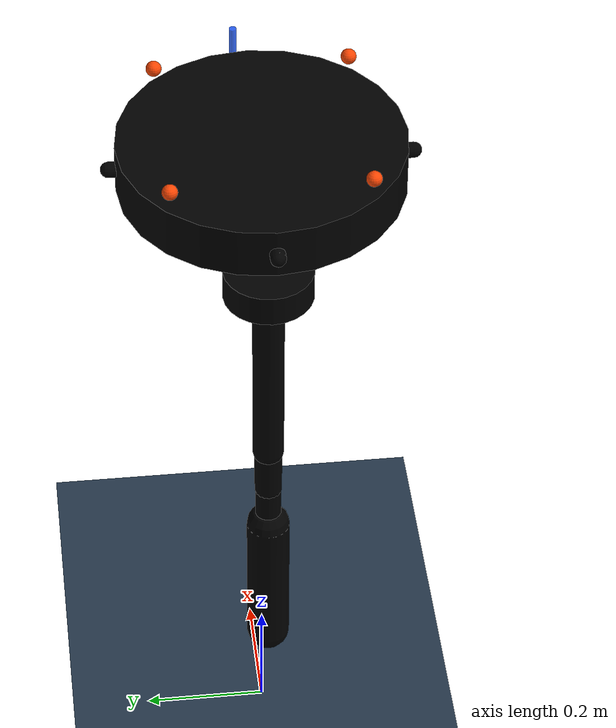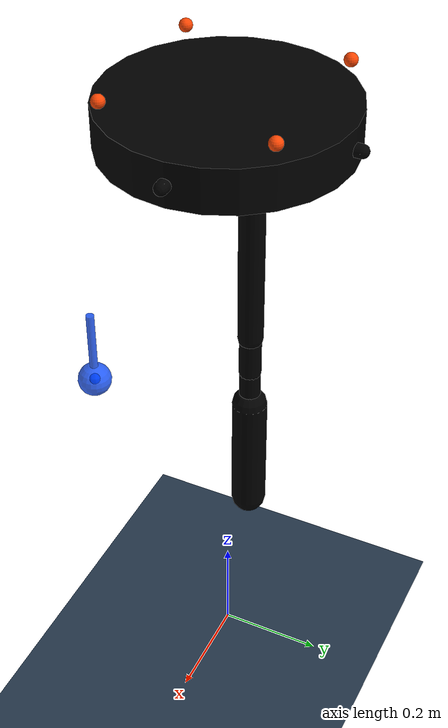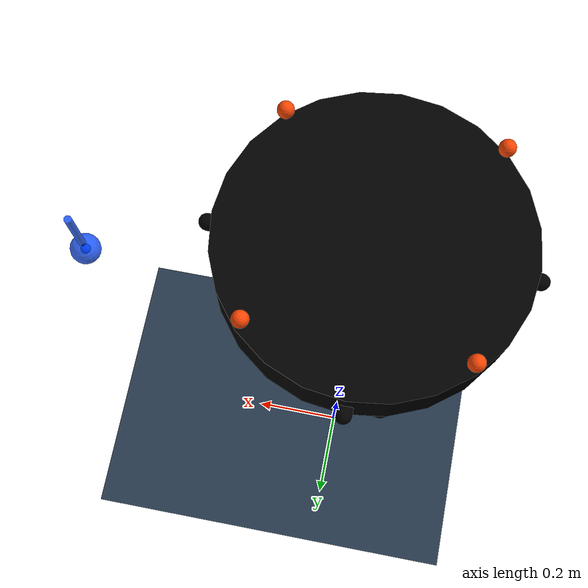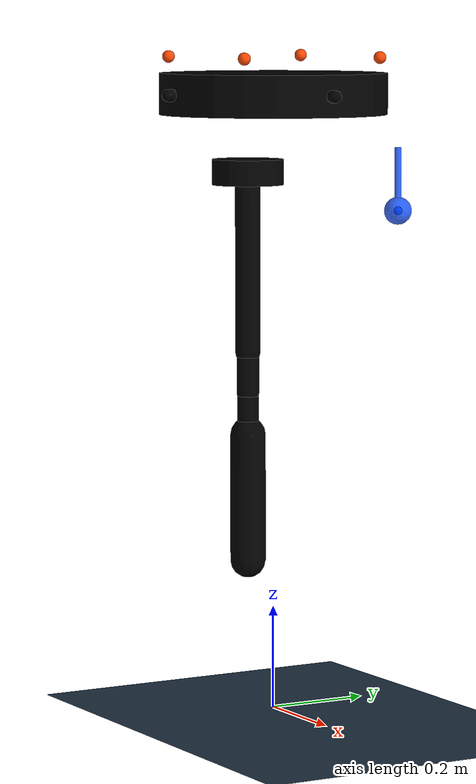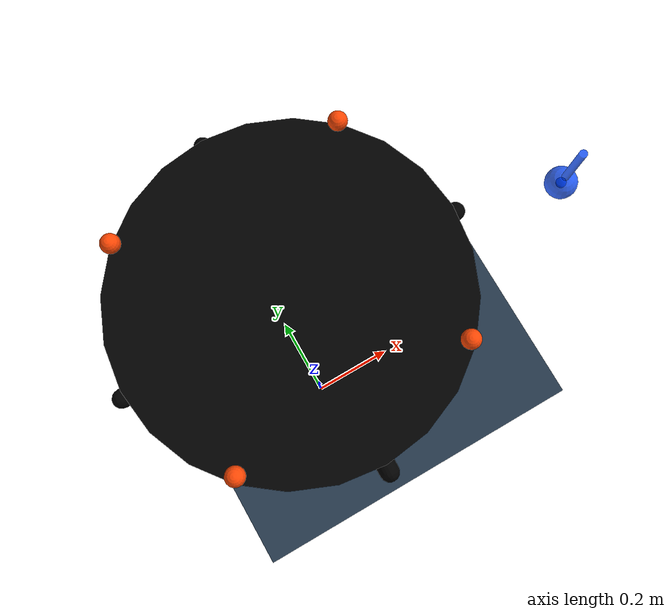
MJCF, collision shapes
<mujoco model="cone_harvest_robot">
  <compiler angle="radian" meshdir="../meshes" autolimits="true" balanceinertia="true"/>
  <option timestep="0.002" gravity="0 0 -9.81" integrator="implicitfast">
    <flag contact="enable"/>
  </option>

  <default>
    <joint damping="0.03" armature="0.002"/>
    <geom friction="0.8 0.1 0.1" condim="3"/>
    <default class="arm_visual">
      <geom type="mesh" group="2" contype="0" conaffinity="0"/>
    </default>
    <default class="arm_collision">
      <geom group="3" rgba="0 0 0 0.08"/>
    </default>
  </default>

  <asset>
    <texture type="skybox" builtin="gradient" rgb1="0.3 0.5 0.7" rgb2="0 0 0" width="512" height="3072"/>
    <texture type="2d" name="groundplane" builtin="checker" mark="edge"
             rgb1="0.2 0.3 0.4" rgb2="0.1 0.15 0.2" markrgb="0.8 0.8 0.8" width="300" height="300"/>
    <material name="groundplane" texture="groundplane" texuniform="true" texrepeat="5 5" reflectance="0.2"/>
    <!-- The robot uses one public-facing palette: black structure, white
         printed/housing parts, orange active hardware, and blue targets. -->
    <material name="chr_black" rgba="0.025 0.025 0.03 1" specular="0.15" shininess="0.25"/>
    <material name="chr_white" rgba="0.92 0.92 0.94 1" specular="0.25" shininess="0.35"/>
    <material name="chr_orange" rgba="1 0.28 0.015 1" specular="0.2" shininess="0.3"/>
    <material name="target_blue" rgba="0.02 0.28 1 0.82" emission="0.12"/>
    <mesh name="palletrone_body_mesh" file="palletrone/BODY.stl"/>
    <mesh name="palletrone_prop_mesh" file="palletrone/PROP.stl"/>
    <mesh name="arm_base_link" file="arm/base_link.STL" scale="0.001 0.001 0.001"/>
    <mesh name="arm_link1_mesh" file="arm/link1.STL" scale="0.001 0.001 0.001"/>
    <mesh name="arm_link2_mesh" file="arm/link2.STL" scale="0.001 0.001 0.001"/>
    <mesh name="arm_link3_mesh" file="arm/link3.STL" scale="0.001 0.001 0.001"/>
    <mesh name="arm_link4_mesh" file="arm/link4.STL" scale="0.001 0.001 0.001"/>
    <!-- Closed octagonal cone used as the desired TCP +Z arrowhead. -->
    <mesh name="desired_tcp_arrowhead_mesh"
          vertex="0.018 0 0  0.012728 0.012728 0  0 0.018 0  -0.012728 0.012728 0
                  -0.018 0 0  -0.012728 -0.012728 0  0 -0.018 0  0.012728 -0.012728 0
                  0 0 0.045  0 0 0"
          face="0 1 8  1 2 8  2 3 8  3 4 8  4 5 8  5 6 8  6 7 8  7 0 8
                1 0 9  2 1 9  3 2 9  4 3 9  5 4 9  6 5 9  7 6 9  0 7 9"/>
  </asset>

  <worldbody>
    <light pos="0 0 4" dir="0 0 -1" directional="true"/>
    <geom name="floor" type="plane" size="5 5 0.1" material="groundplane"/>
    <body name="base" pos="0 0 1.2">
      <include file="palletrone.xml"/>
      <!-- Mount translation is expressed in the Palletrone body frame. Keep
           the matching transform in ChrKinematics::tcp_in_world synchronized. -->
      <body name="arm_mount" pos="-0.10 0 -0.13">
        <include file="arm.xml"/>
      </body>
    </body>
    <body name="desired_tcp_marker" mocap="true" pos="0.45 0 1.0">
      <geom name="desired_tcp_marker_sphere" type="sphere" size="0.025"
            contype="0" conaffinity="0" material="target_blue"/>
      <!-- The arrow follows the commanded quaternion and points along the
           desired TCP frame's local +Z axis. -->
      <geom name="desired_tcp_attitude_shaft" type="cylinder" size="0.006 0.05"
            pos="0 0 0.065" contype="0" conaffinity="0" material="target_blue"/>
      <geom name="desired_tcp_attitude_head" type="mesh" mesh="desired_tcp_arrowhead_mesh"
            pos="0 0 0.115" contype="0" conaffinity="0" material="target_blue"/>
      <site name="desired_tcp_marker_site" size="0.008" rgba="0.02 0.28 1 1"/>
    </body>
  </worldbody>

  <actuator>
    <general name="rotor_0_act" site="rotor_0" gear="0 0 1 0 0 0.01" ctrlrange="0 25"/>
    <general name="rotor_1_act" site="rotor_1" gear="0 0 1 0 0 -0.01" ctrlrange="0 25"/>
    <general name="rotor_2_act" site="rotor_2" gear="0 0 1 0 0 0.01" ctrlrange="0 25"/>
    <general name="rotor_3_act" site="rotor_3" gear="0 0 1 0 0 -0.01" ctrlrange="0 25"/>
    <position name="rotor_0_tilt_act" joint="rotor_0_tilt_joint" kp="40" kv="4" ctrlrange="-0.6 0.6"/>
    <position name="rotor_1_tilt_act" joint="rotor_1_tilt_joint" kp="40" kv="4" ctrlrange="-0.6 0.6"/>
    <position name="rotor_2_tilt_act" joint="rotor_2_tilt_joint" kp="40" kv="4" ctrlrange="-0.6 0.6"/>
    <position name="rotor_3_tilt_act" joint="rotor_3_tilt_joint" kp="40" kv="4" ctrlrange="-0.6 0.6"/>
    <motor name="J1_act" joint="J1" ctrlrange="-10 10"/>
    <motor name="J2_act" joint="J2" ctrlrange="-10 10"/>
    <motor name="J3_act" joint="J3" ctrlrange="-10 10"/>
  </actuator>

  <sensor>
    <!-- Ideal sensors keep the logging API hardware-compatible. Noise and
         latency can be added later without changing the ROS message contract. -->
    <jointactuatorfrc name="J1_torque_sensor" joint="J1"/>
    <jointactuatorfrc name="J2_torque_sensor" joint="J2"/>
    <jointactuatorfrc name="J3_torque_sensor" joint="J3"/>
    <framepos name="tcp_position_sensor" objtype="site" objname="tcp"/>
    <framequat name="tcp_orientation_sensor" objtype="site" objname="tcp"/>
  </sensor>

  <keyframe>
    <key name="home" qpos="0 0 1.2 1 0 0 0 0 0 0 0 0 0 0" ctrl="16 16 16 16 0 0 0 0 0 0 0"/>
  </keyframe>
</mujoco>

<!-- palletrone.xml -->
<mujoco>
  <freejoint name="base_free"/>
  <inertial mass="4.43" pos="0 0 0" diaginertia="0.09 0.09 0.16"/>
  <!-- Exact CAD is visual-only; primitives keep contact stable and inexpensive. -->
  <geom name="palletrone_body_visual" type="mesh" mesh="palletrone_body_mesh"
        group="1" contype="0" conaffinity="0" material="chr_black"/>
  <geom name="airframe_collision" type="cylinder" size="0.22 0.04"
        group="3" rgba="0 0 0 0"/>
  <geom name="arm_x_collision" type="capsule" fromto="-0.23 0 0 0.23 0 0"
        size="0.012" group="3" rgba="0 0 0 0"/>
  <geom name="arm_y_collision" type="capsule" fromto="0 -0.23 0 0 0.23 0"
        size="0.012" group="3" rgba="0 0 0 0"/>

  <!-- X-configuration copied from the original TPAM Palletrone model. -->
  <body name="rotor_0_tilt" pos="0.148492 0.148492 0.07"
        quat="0.9238795 0 0 0.3826834">
    <joint name="rotor_0_tilt_joint" axis="1 0 0" range="-0.6 0.6"/>
    <inertial mass="0.02" pos="0 0 0" diaginertia="0.0001 0.0001 0.0001"/>
    <geom name="rotor_0_visual" type="mesh" mesh="palletrone_prop_mesh"
          quat="0.7071068 0 0 0.7071068" group="1" contype="0" conaffinity="0"
          material="chr_orange"/>
    <site name="rotor_0" size="0.012" rgba="1 0.28 0.015 1"/>
  </body>
  <body name="rotor_1_tilt" pos="-0.148492 0.148492 0.07"
        quat="0.3826834 0 0 0.9238795">
    <joint name="rotor_1_tilt_joint" axis="1 0 0" range="-0.6 0.6"/>
    <inertial mass="0.02" pos="0 0 0" diaginertia="0.0001 0.0001 0.0001"/>
    <geom name="rotor_1_visual" type="mesh" mesh="palletrone_prop_mesh"
          quat="0.7071068 0 0 0.7071068" group="1" contype="0" conaffinity="0"
          material="chr_orange"/>
    <site name="rotor_1" size="0.012" rgba="1 0.28 0.015 1"/>
  </body>
  <body name="rotor_2_tilt" pos="-0.148492 -0.148492 0.07"
        quat="0.3826834 0 0 -0.9238795">
    <joint name="rotor_2_tilt_joint" axis="1 0 0" range="-0.6 0.6"/>
    <inertial mass="0.02" pos="0 0 0" diaginertia="0.0001 0.0001 0.0001"/>
    <geom name="rotor_2_visual" type="mesh" mesh="palletrone_prop_mesh"
          quat="0.7071068 0 0 0.7071068" group="1" contype="0" conaffinity="0"
          material="chr_orange"/>
    <site name="rotor_2" size="0.012" rgba="1 0.28 0.015 1"/>
  </body>
  <body name="rotor_3_tilt" pos="0.148492 -0.148492 0.07"
        quat="0.9238795 0 0 -0.3826834">
    <joint name="rotor_3_tilt_joint" axis="1 0 0" range="-0.6 0.6"/>
    <inertial mass="0.02" pos="0 0 0" diaginertia="0.0001 0.0001 0.0001"/>
    <geom name="rotor_3_visual" type="mesh" mesh="palletrone_prop_mesh"
          quat="0.7071068 0 0 0.7071068" group="1" contype="0" conaffinity="0"
          material="chr_orange"/>
    <site name="rotor_3" size="0.012" rgba="1 0.28 0.015 1"/>
  </body>
</mujoco>

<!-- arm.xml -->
<mujoco>
  <body name="arm_base_link" quat="0 1 0 0">
    <inertial pos="-0.01024 0 0.02917" mass="0.205"
              fullinertia="0.00027 0.00033 0.00013 0 0.00006 0"/>
    <geom class="arm_visual" mesh="arm_base_link" material="chr_white"/>
    <geom class="arm_collision" type="cylinder" size="0.07 0.025" pos="0 0 0.025"/>

    <body name="arm_link1" pos="0 0 0.04475" quat="0.4999981634 -0.5 -0.5 -0.5000018366">
      <joint name="J1" type="hinge" axis="0 0 1" range="0 1.5708"/>
      <inertial pos="0.23315 0 0.0003" mass="0.394"
                fullinertia="0.00011 0.02625 0.02621 0 -0.00004 0"/>
      <geom class="arm_visual" mesh="arm_link1_mesh" material="chr_black"/>
      <geom class="arm_collision" type="capsule" fromto="0 0 0 0.333 0 0" size="0.025"/>

      <body name="arm_link2" pos="0.333 0 0">
        <joint name="J2" type="hinge" axis="0 0 1" range="-1.5708 1.5708"/>
        <inertial pos="0.06362 0.00046 0" mass="0.205"
                  fullinertia="0.00006 0.00095 0.00096 -0.00001 0 0"/>
        <geom class="arm_visual" mesh="arm_link2_mesh" material="chr_white"/>
        <geom class="arm_collision" type="capsule" fromto="0 0 0 0.0835 0 0" size="0.022"/>

        <body name="arm_link3" pos="0.0835 0 0" quat="0.7071054825 -0.7071080799 0 0">
          <joint name="J3" type="hinge" axis="0 0 1" range="-1.5708 1.5708"/>
          <inertial pos="0.06268 0.01244 0" mass="0.304"
                    fullinertia="0.00017 0.00142 0.00151 -0.00022 0 0"/>
          <geom class="arm_visual" mesh="arm_link3_mesh" material="chr_black"/>
          <geom class="arm_collision" type="capsule" fromto="0 0 0 0.081 0 0" size="0.021"/>

          <body name="arm_link4" pos="0.081 0 0" quat="0.4999981634 -0.5 0.5000018366 -0.5">
            <inertial pos="-0.00062 -0.04272 0.11889" mass="0.856"
                      fullinertia="0.02161 0.01623 0.00887 0 0.00003 0.00284"/>
            <geom class="arm_visual" mesh="arm_link4_mesh" material="chr_white"/>
            <geom class="arm_collision" type="capsule" fromto="0 0 0 0 0 0.25" size="0.035"/>
            <site name="tcp" pos="0 0 0.25" size="0.018" rgba="1 0.28 0.015 1"/>
          </body>
        </body>
      </body>
    </body>
  </body>
</mujoco>
